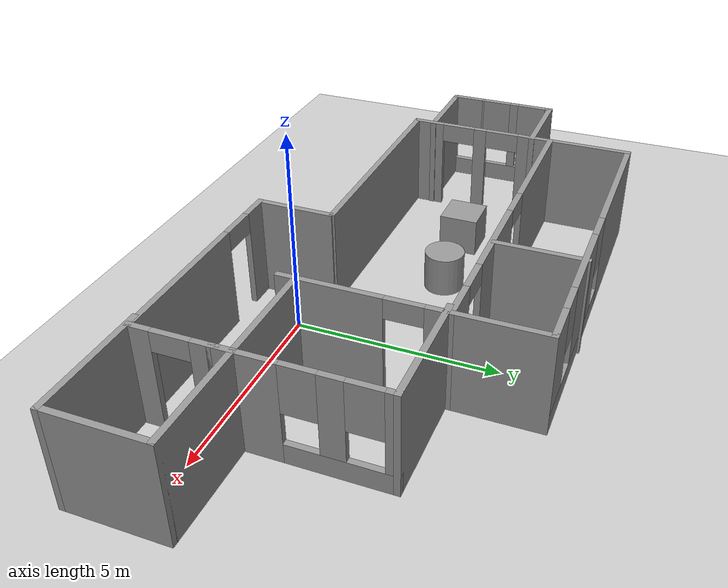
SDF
<sdf version="1.7">
 <world name="default">
  <light name="sun" type="directional">
   <pose>0 0 10 0 -0 0</pose>
   <diffuse>0.8 0.8 0.8 1</diffuse>
   <specular>0.2 0.2 0.2 1</specular>
   <attenuation>
    <range>1000</range>
    <constant>0.9</constant>
    <linear>0.01</linear>
    <quadratic>0.001</quadratic>
   </attenuation>
   <direction>-0.5 0.1 -0.9</direction>
   <spot><inner_angle>0</inner_angle><outer_angle>0</outer_angle><falloff>0</falloff></spot>
  </light>
  <model name="ground_plane">
   <static>1</static>
   <link name="link">
    <collision name="collision">
     <geometry><plane><normal>0 0 1</normal><size>100 100</size></plane></geometry>
     <surface><friction><ode><mu>100</mu><mu2>50</mu2></ode></friction></surface>
    </collision>
    <visual name="visual">
     <cast_shadows>0</cast_shadows>
     <geometry><plane><normal>0 0 1</normal><size>100 100</size></plane></geometry>
     <material>
      <script><uri>file://media/materials/scripts/gazebo.material</uri><name>Gazebo/Grey</name></script>
     </material>
    </visual>
   </link>
  </model>
  <gravity>0 0 -9.8</gravity>
  <magnetic_field>6e-06 2.3e-05 -4.2e-05</magnetic_field>
  <atmosphere type="adiabatic"/>
  <physics type="ode">
   <max_step_size>0.001</max_step_size>
   <real_time_factor>1</real_time_factor>
   <real_time_update_rate>1000</real_time_update_rate>
  </physics>
  <scene><ambient>0.4 0.4 0.4 1</ambient><background>0.7 0.7 0.7 1</background><shadows>1</shadows></scene>
  <audio><device>default</device></audio>
  <spherical_coordinates>
   <surface_model>EARTH_WGS84</surface_model>
   <latitude_deg>0</latitude_deg>
   <longitude_deg>0</longitude_deg>
   <elevation>0</elevation>
   <heading_deg>0</heading_deg>
  </spherical_coordinates>
  <model name="room">
   <pose>-1.21742 2.4324 0 0 -0 0</pose>
   <link name="Wall_12">
    <pose>-1.58672 1.82393 0 0 -0 0</pose>
    <visual name="Wall_12_Visual_0">
     <pose>-2.70259 0 1.25 0 -0 0</pose>
     <geometry><box><size>3.34482 0.15 2.5</size></box></geometry>
     <material>
      <script><uri>file://media/materials/scripts/gazebo.material</uri><name>Gazebo/Grey</name></script>
      <ambient>1 1 1 1</ambient>
     </material>
     <meta><layer>0</layer></meta>
    </visual>
    <collision name="Wall_12_Collision_0">
     <geometry><box><size>3.34482 0.15 2.5</size></box></geometry>
     <pose>-2.70259 0 1.25 0 -0 0</pose>
    </collision>
    <visual name="Wall_12_Visual_1">
     <pose>1.13554 0 1.25 0 -0 0</pose>
     <geometry><box><size>2.53143 0.15 2.5</size></box></geometry>
     <material>
      <script><uri>file://media/materials/scripts/gazebo.material</uri><name>Gazebo/Grey</name></script>
      <ambient>1 1 1 1</ambient>
     </material>
     <meta><layer>0</layer></meta>
    </visual>
    <collision name="Wall_12_Collision_1">
     <geometry><box><size>2.53143 0.15 2.5</size></box></geometry>
     <pose>1.13554 0 1.25 0 -0 0</pose>
    </collision>
    <visual name="Wall_12_Visual_2">
     <pose>3.83812 0 1.25 0 -0 0</pose>
     <geometry><box><size>1.07375 0.15 2.5</size></box></geometry>
     <material>
      <script><uri>file://media/materials/scripts/gazebo.material</uri><name>Gazebo/Grey</name></script>
      <ambient>1 1 1 1</ambient>
     </material>
     <meta><layer>0</layer></meta>
    </visual>
    <collision name="Wall_12_Collision_2">
     <geometry><box><size>1.07375 0.15 2.5</size></box></geometry>
     <pose>3.83812 0 1.25 0 -0 0</pose>
    </collision>
    <visual name="Wall_12_Visual_3">
     <pose>-0.580177 0 2.25 0 -0 0</pose>
     <geometry><box><size>0.9 0.15 0.5</size></box></geometry>
     <material>
      <script><uri>file://media/materials/scripts/gazebo.material</uri><name>Gazebo/Grey</name></script>
      <ambient>1 1 1 1</ambient>
     </material>
     <meta><layer>0</layer></meta>
    </visual>
    <collision name="Wall_12_Collision_3">
     <geometry><box><size>0.9 0.15 0.5</size></box></geometry>
     <pose>-0.580177 0 2.25 0 -0 0</pose>
    </collision>
    <visual name="Wall_12_Visual_4">
     <pose>2.85125 0 2.25 0 -0 0</pose>
     <geometry><box><size>0.9 0.15 0.5</size></box></geometry>
     <material>
      <script><uri>file://media/materials/scripts/gazebo.material</uri><name>Gazebo/Grey</name></script>
      <ambient>1 1 1 1</ambient>
     </material>
     <meta><layer>0</layer></meta>
    </visual>
    <collision name="Wall_12_Collision_4">
     <geometry><box><size>0.9 0.15 0.5</size></box></geometry>
     <pose>2.85125 0 2.25 0 -0 0</pose>
    </collision>
   </link>
   <link name="Wall_13">
    <pose>2.71328 -0.101075 0 0 -0 -1.5708</pose>
    <visual name="Wall_13_Visual_0">
     <pose>-1.68439 0 1.25 0 -0 0</pose>
     <geometry><box><size>0.631218 0.15 2.5</size></box></geometry>
     <material>
      <script><uri>file://media/materials/scripts/gazebo.material</uri><name>Gazebo/Grey</name></script>
      <ambient>1 1 1 1</ambient>
     </material>
     <meta><layer>0</layer></meta>
    </visual>
    <collision name="Wall_13_Collision_0">
     <geometry><box><size>0.631218 0.15 2.5</size></box></geometry>
     <pose>-1.68439 0 1.25 0 -0 0</pose>
    </collision>
    <visual name="Wall_13_Visual_1">
     <pose>0.765609 0 1.25 0 -0 0</pose>
     <geometry><box><size>2.46878 0.15 2.5</size></box></geometry>
     <material>
      <script><uri>file://media/materials/scripts/gazebo.material</uri><name>Gazebo/Grey</name></script>
      <ambient>1 1 1 1</ambient>
     </material>
     <meta><layer>0</layer></meta>
    </visual>
    <collision name="Wall_13_Collision_1">
     <geometry><box><size>2.46878 0.15 2.5</size></box></geometry>
     <pose>0.765609 0 1.25 0 -0 0</pose>
    </collision>
    <visual name="Wall_13_Visual_2">
     <pose>-0.918782 0 2.25 0 -0 0</pose>
     <geometry><box><size>0.9 0.15 0.5</size></box></geometry>
     <material>
      <script><uri>file://media/materials/scripts/gazebo.material</uri><name>Gazebo/Grey</name></script>
      <ambient>1 1 1 1</ambient>
     </material>
     <meta><layer>0</layer></meta>
    </visual>
    <collision name="Wall_13_Collision_2">
     <geometry><box><size>0.9 0.15 0.5</size></box></geometry>
     <pose>-0.918782 0 2.25 0 -0 0</pose>
    </collision>
   </link>
   <link name="Wall_16">
    <collision name="Wall_16_Collision">
     <geometry><box><size>2 0.15 2.5</size></box></geometry>
     <pose>0 0 1.25 0 -0 0</pose>
    </collision>
    <visual name="Wall_16_Visual">
     <pose>0 0 1.25 0 -0 0</pose>
     <geometry><box><size>2 0.15 2.5</size></box></geometry>
     <material>
      <script><uri>file://media/materials/scripts/gazebo.material</uri><name>Gazebo/Grey</name></script>
      <ambient>1 1 1 1</ambient>
     </material>
     <meta><layer>0</layer></meta>
    </visual>
    <pose>0.014322 -3.00671 0 0 -0 -1.5708</pose>
   </link>
   <link name="Wall_17">
    <pose>2.68932 -3.93172 0 0 -0 0</pose>
    <visual name="Wall_17_Visual_0">
     <pose>-2.3656 0 1.25 0 -0 0</pose>
     <geometry><box><size>0.768809 0.15 2.5</size></box></geometry>
     <material>
      <script><uri>file://media/materials/scripts/gazebo.material</uri><name>Gazebo/Grey</name></script>
      <ambient>1 1 1 1</ambient>
     </material>
     <meta><layer>0</layer></meta>
    </visual>
    <collision name="Wall_17_Collision_0">
     <geometry><box><size>0.768809 0.15 2.5</size></box></geometry>
     <pose>-2.3656 0 1.25 0 -0 0</pose>
    </collision>
    <visual name="Wall_17_Visual_1">
     <pose>0.834404 0 1.25 0 -0 0</pose>
     <geometry><box><size>3.83119 0.15 2.5</size></box></geometry>
     <material>
      <script><uri>file://media/materials/scripts/gazebo.material</uri><name>Gazebo/Grey</name></script>
      <ambient>1 1 1 1</ambient>
     </material>
     <meta><layer>0</layer></meta>
    </visual>
    <collision name="Wall_17_Collision_1">
     <geometry><box><size>3.83119 0.15 2.5</size></box></geometry>
     <pose>0.834404 0 1.25 0 -0 0</pose>
    </collision>
    <visual name="Wall_17_Visual_2">
     <pose>-1.53119 0 2.25 0 -0 0</pose>
     <geometry><box><size>0.9 0.15 0.5</size></box></geometry>
     <material>
      <script><uri>file://media/materials/scripts/gazebo.material</uri><name>Gazebo/Grey</name></script>
      <ambient>1 1 1 1</ambient>
     </material>
     <meta><layer>0</layer></meta>
    </visual>
    <collision name="Wall_17_Collision_2">
     <geometry><box><size>0.9 0.15 0.5</size></box></geometry>
     <pose>-1.53119 0 2.25 0 -0 0</pose>
    </collision>
   </link>
   <link name="Wall_18">
    <pose>5.36432 -3.00671 0 0 -0 1.5708</pose>
    <visual name="Wall_18_Visual_0">
     <pose>-0.714703 0 1.25 0 -0 0</pose>
     <geometry><box><size>0.570593 0.15 2.5</size></box></geometry>
     <material>
      <script><uri>file://media/materials/scripts/gazebo.material</uri><name>Gazebo/Grey</name></script>
      <ambient>1 1 1 1</ambient>
     </material>
     <meta><layer>0</layer></meta>
    </visual>
    <collision name="Wall_18_Collision_0">
     <geometry><box><size>0.570593 0.15 2.5</size></box></geometry>
     <pose>-0.714703 0 1.25 0 -0 0</pose>
    </collision>
    <visual name="Wall_18_Visual_1">
     <pose>0.735297 0 1.25 0 -0 0</pose>
     <geometry><box><size>0.529407 0.15 2.5</size></box></geometry>
     <material>
      <script><uri>file://media/materials/scripts/gazebo.material</uri><name>Gazebo/Grey</name></script>
      <ambient>1 1 1 1</ambient>
     </material>
     <meta><layer>0</layer></meta>
    </visual>
    <collision name="Wall_18_Collision_1">
     <geometry><box><size>0.529407 0.15 2.5</size></box></geometry>
     <pose>0.735297 0 1.25 0 -0 0</pose>
    </collision>
    <visual name="Wall_18_Visual_2">
     <pose>0.020593 0 2.25 0 -0 0</pose>
     <geometry><box><size>0.9 0.15 0.5</size></box></geometry>
     <material>
      <script><uri>file://media/materials/scripts/gazebo.material</uri><name>Gazebo/Grey</name></script>
      <ambient>1 1 1 1</ambient>
     </material>
     <meta><layer>0</layer></meta>
    </visual>
    <collision name="Wall_18_Collision_2">
     <geometry><box><size>0.9 0.15 0.5</size></box></geometry>
     <pose>0.020593 0 2.25 0 -0 0</pose>
    </collision>
   </link>
   <link name="Wall_19">
    <collision name="Wall_19_Collision">
     <geometry><box><size>0.15 0.15 2.5</size></box></geometry>
     <pose>0 0 1.25 0 -0 0</pose>
    </collision>
    <visual name="Wall_19_Visual">
     <pose>0 0 1.25 0 -0 0</pose>
     <geometry><box><size>0.15 0.15 2.5</size></box></geometry>
     <material>
      <script><uri>file://media/materials/scripts/gazebo.material</uri><name>Gazebo/Grey</name></script>
      <ambient>1 1 1 1</ambient>
     </material>
     <meta><layer>0</layer></meta>
    </visual>
    <pose>5.36432 -2.08171 0 0 -0 0</pose>
   </link>
   <link name="Wall_20">
    <collision name="Wall_20_Collision">
     <geometry><box><size>0.25 0.15 2.5</size></box></geometry>
     <pose>0 0 1.25 0 -0 0</pose>
    </collision>
    <visual name="Wall_20_Visual">
     <pose>0 0 1.25 0 -0 0</pose>
     <geometry><box><size>0.25 0.15 2.5</size></box></geometry>
     <material>
      <script><uri>file://media/materials/scripts/gazebo.material</uri><name>Gazebo/Grey</name></script>
      <ambient>1 1 1 1</ambient>
     </material>
     <meta><layer>0</layer></meta>
    </visual>
    <pose>5.36432 -2.03172 0 0 -0 1.5708</pose>
   </link>
   <link name="Wall_21">
    <collision name="Wall_21_Collision">
     <geometry><box><size>0.5 0.15 2.5</size></box></geometry>
     <pose>0 0 1.25 0 -0 0</pose>
    </collision>
    <visual name="Wall_21_Visual">
     <pose>0 0 1.25 0 -0 0</pose>
     <geometry><box><size>0.5 0.15 2.5</size></box></geometry>
     <material>
      <script><uri>file://media/materials/scripts/gazebo.material</uri><name>Gazebo/Grey</name></script>
      <ambient>1 1 1 1</ambient>
     </material>
     <meta><layer>0</layer></meta>
    </visual>
    <pose>5.36432 -1.80672 0 0 -0 1.5708</pose>
   </link>
   <link name="Wall_22">
    <collision name="Wall_22_Collision">
     <geometry><box><size>2.75 0.15 2.5</size></box></geometry>
     <pose>0 0 1.25 0 -0 0</pose>
    </collision>
    <visual name="Wall_22_Visual">
     <pose>0 0 1.25 0 -0 0</pose>
     <geometry><box><size>2.75 0.15 2.5</size></box></geometry>
     <material>
      <script><uri>file://media/materials/scripts/gazebo.material</uri><name>Gazebo/Grey</name></script>
      <ambient>1 1 1 1</ambient>
     </material>
     <meta><layer>0</layer></meta>
    </visual>
    <pose>4.06432 -1.63172 0 0 -0 3.14159</pose>
   </link>
   <link name="Wall_24">
    <collision name="Wall_24_Collision">
     <geometry><box><size>6 0.15 2.5</size></box></geometry>
     <pose>0 0 1.25 0 -0 0</pose>
    </collision>
    <visual name="Wall_24_Visual">
     <pose>0 0 1.25 0 -0 0</pose>
     <geometry><box><size>6 0.15 2.5</size></box></geometry>
     <material>
      <script><uri>file://media/materials/scripts/gazebo.material</uri><name>Gazebo/Grey</name></script>
      <ambient>1 1 1 1</ambient>
     </material>
     <meta><layer>0</layer></meta>
    </visual>
    <pose>-2.96172 -2.02608 0 0 -0 0</pose>
   </link>
   <link name="Wall_26">
    <collision name="Wall_26_Collision">
     <geometry><box><size>2.75 0.15 2.5</size></box></geometry>
     <pose>0 0 1.25 0 -0 0</pose>
    </collision>
    <visual name="Wall_26_Visual">
     <pose>0 0 1.25 0 -0 0</pose>
     <geometry><box><size>2.75 0.15 2.5</size></box></geometry>
     <material>
      <script><uri>file://media/materials/scripts/gazebo.material</uri><name>Gazebo/Grey</name></script>
      <ambient>1 1 1 1</ambient>
     </material>
     <meta><layer>0</layer></meta>
    </visual>
    <pose>6.66432 -1.63172 0 0 -0 0</pose>
   </link>
   <link name="Wall_27">
    <collision name="Wall_27_Collision">
     <geometry><box><size>2.5 0.15 2.5</size></box></geometry>
     <pose>0 0 1.25 0 -0 0</pose>
    </collision>
    <visual name="Wall_27_Visual">
     <pose>0 0 1.25 0 -0 0</pose>
     <geometry><box><size>2.5 0.15 2.5</size></box></geometry>
     <material>
      <script><uri>file://media/materials/scripts/gazebo.material</uri><name>Gazebo/Grey</name></script>
      <ambient>1 1 1 1</ambient>
     </material>
     <meta><layer>0</layer></meta>
    </visual>
    <pose>7.96432 -2.80672 0 0 -0 -1.5708</pose>
   </link>
   <link name="Wall_28">
    <collision name="Wall_28_Collision">
     <geometry><box><size>3 0.15 2.5</size></box></geometry>
     <pose>0 0 1.25 0 -0 0</pose>
    </collision>
    <visual name="Wall_28_Visual">
     <pose>0 0 1.25 0 -0 0</pose>
     <geometry><box><size>3 0.15 2.5</size></box></geometry>
     <material>
      <script><uri>file://media/materials/scripts/gazebo.material</uri><name>Gazebo/Grey</name></script>
      <ambient>1 1 1 1</ambient>
     </material>
     <meta><layer>0</layer></meta>
    </visual>
    <pose>6.53932 -3.98171 0 0 -0 3.14159</pose>
   </link>
   <link name="Wall_31">
    <pose>5.36432 0.043285 0 0 -0 1.5708</pose>
    <visual name="Wall_31_Visual_0">
     <pose>-1.23309 0 1.25 0 -0 0</pose>
     <geometry><box><size>1.03381 0.15 2.5</size></box></geometry>
     <material>
      <script><uri>file://media/materials/scripts/gazebo.material</uri><name>Gazebo/Grey</name></script>
      <ambient>1 1 1 1</ambient>
     </material>
     <meta><layer>0</layer></meta>
    </visual>
    <collision name="Wall_31_Collision_0">
     <geometry><box><size>1.03381 0.15 2.5</size></box></geometry>
     <pose>-1.23309 0 1.25 0 -0 0</pose>
    </collision>
    <visual name="Wall_31_Visual_1">
     <pose>0.516907 0 0.25 0 -0 0</pose>
     <geometry><box><size>2.46619 0.15 0.5</size></box></geometry>
     <material>
      <script><uri>file://media/materials/scripts/gazebo.material</uri><name>Gazebo/Grey</name></script>
      <ambient>1 1 1 1</ambient>
     </material>
     <meta><layer>0</layer></meta>
    </visual>
    <collision name="Wall_31_Collision_1">
     <geometry><box><size>2.46619 0.15 0.5</size></box></geometry>
     <pose>0.516907 0 0.25 0 -0 0</pose>
    </collision>
    <visual name="Wall_31_Visual_2">
     <pose>0.362119 0 1.5 0 -0 0</pose>
     <geometry><box><size>0.55661 0.15 2</size></box></geometry>
     <material>
      <script><uri>file://media/materials/scripts/gazebo.material</uri><name>Gazebo/Grey</name></script>
      <ambient>1 1 1 1</ambient>
     </material>
     <meta><layer>0</layer></meta>
    </visual>
    <collision name="Wall_31_Collision_2">
     <geometry><box><size>0.55661 0.15 2</size></box></geometry>
     <pose>0.362119 0 1.5 0 -0 0</pose>
    </collision>
    <visual name="Wall_31_Visual_3">
     <pose>1.59521 0 1.5 0 -0 0</pose>
     <geometry><box><size>0.309576 0.15 2</size></box></geometry>
     <material>
      <script><uri>file://media/materials/scripts/gazebo.material</uri><name>Gazebo/Grey</name></script>
      <ambient>1 1 1 1</ambient>
     </material>
     <meta><layer>0</layer></meta>
    </visual>
    <collision name="Wall_31_Collision_3">
     <geometry><box><size>0.309576 0.15 2</size></box></geometry>
     <pose>1.59521 0 1.5 0 -0 0</pose>
    </collision>
    <visual name="Wall_31_Visual_4">
     <pose>-0.316186 0 1.9 0 -0 0</pose>
     <geometry><box><size>0.8 0.15 1.2</size></box></geometry>
     <material>
      <script><uri>file://media/materials/scripts/gazebo.material</uri><name>Gazebo/Grey</name></script>
      <ambient>1 1 1 1</ambient>
     </material>
     <meta><layer>0</layer></meta>
    </visual>
    <collision name="Wall_31_Collision_4">
     <geometry><box><size>0.8 0.15 1.2</size></box></geometry>
     <pose>-0.316186 0 1.9 0 -0 0</pose>
    </collision>
    <visual name="Wall_31_Visual_5">
     <pose>1.04042 0 1.9 0 -0 0</pose>
     <geometry><box><size>0.8 0.15 1.2</size></box></geometry>
     <material>
      <script><uri>file://media/materials/scripts/gazebo.material</uri><name>Gazebo/Grey</name></script>
      <ambient>1 1 1 1</ambient>
     </material>
     <meta><layer>0</layer></meta>
    </visual>
    <collision name="Wall_31_Collision_5">
     <geometry><box><size>0.8 0.15 1.2</size></box></geometry>
     <pose>1.04042 0 1.9 0 -0 0</pose>
    </collision>
   </link>
   <link name="Wall_32">
    <collision name="Wall_32_Collision">
     <geometry><box><size>3 0.15 2.5</size></box></geometry>
     <pose>0 0 1.25 0 -0 0</pose>
    </collision>
    <visual name="Wall_32_Visual">
     <pose>0 0 1.25 0 -0 0</pose>
     <geometry><box><size>3 0.15 2.5</size></box></geometry>
     <material>
      <script><uri>file://media/materials/scripts/gazebo.material</uri><name>Gazebo/Grey</name></script>
      <ambient>1 1 1 1</ambient>
     </material>
     <meta><layer>0</layer></meta>
    </visual>
    <pose>3.93932 1.71829 0 0 -0 3.14159</pose>
   </link>
   <link name="Wall_34">
    <collision name="Wall_34_Collision">
     <geometry><box><size>2.25 0.15 2.5</size></box></geometry>
     <pose>0 0 1.25 0 -0 0</pose>
    </collision>
    <visual name="Wall_34_Visual">
     <pose>0 0 1.25 0 -0 0</pose>
     <geometry><box><size>2.25 0.15 2.5</size></box></geometry>
     <material>
      <script><uri>file://media/materials/scripts/gazebo.material</uri><name>Gazebo/Grey</name></script>
      <ambient>1 1 1 1</ambient>
     </material>
     <meta><layer>0</layer></meta>
    </visual>
    <pose>-5.88672 2.87392 0 0 -0 1.5708</pose>
   </link>
   <link name="Wall_35">
    <pose>-1.58672 3.92393 0 0 -0 0</pose>
    <visual name="Wall_35_Visual_0">
     <pose>-2.46479 0 1.25 0 -0 0</pose>
     <geometry><box><size>3.82043 0.15 2.5</size></box></geometry>
     <material>
      <script><uri>file://media/materials/scripts/gazebo.material</uri><name>Gazebo/Grey</name></script>
      <ambient>1 1 1 1</ambient>
     </material>
     <meta><layer>0</layer></meta>
    </visual>
    <collision name="Wall_35_Collision_0">
     <geometry><box><size>3.82043 0.15 2.5</size></box></geometry>
     <pose>-2.46479 0 1.25 0 -0 0</pose>
    </collision>
    <visual name="Wall_35_Visual_1">
     <pose>1.91021 0 0.25 0 -0 0</pose>
     <geometry><box><size>4.92957 0.15 0.5</size></box></geometry>
     <material>
      <script><uri>file://media/materials/scripts/gazebo.material</uri><name>Gazebo/Grey</name></script>
      <ambient>1 1 1 1</ambient>
     </material>
     <meta><layer>0</layer></meta>
    </visual>
    <collision name="Wall_35_Collision_1">
     <geometry><box><size>4.92957 0.15 0.5</size></box></geometry>
     <pose>1.91021 0 0.25 0 -0 0</pose>
    </collision>
    <visual name="Wall_35_Visual_2">
     <pose>1.38824 0 1.5 0 -0 0</pose>
     <geometry><box><size>2.28562 0.15 2</size></box></geometry>
     <material>
      <script><uri>file://media/materials/scripts/gazebo.material</uri><name>Gazebo/Grey</name></script>
      <ambient>1 1 1 1</ambient>
     </material>
     <meta><layer>0</layer></meta>
    </visual>
    <collision name="Wall_35_Collision_2">
     <geometry><box><size>2.28562 0.15 2</size></box></geometry>
     <pose>1.38824 0 1.5 0 -0 0</pose>
    </collision>
    <visual name="Wall_35_Visual_3">
     <pose>3.85302 0 1.5 0 -0 0</pose>
     <geometry><box><size>1.04395 0.15 2</size></box></geometry>
     <material>
      <script><uri>file://media/materials/scripts/gazebo.material</uri><name>Gazebo/Grey</name></script>
      <ambient>1 1 1 1</ambient>
     </material>
     <meta><layer>0</layer></meta>
    </visual>
    <collision name="Wall_35_Collision_3">
     <geometry><box><size>1.04395 0.15 2</size></box></geometry>
     <pose>3.85302 0 1.5 0 -0 0</pose>
    </collision>
    <visual name="Wall_35_Visual_4">
     <pose>-0.154574 0 1.9 0 -0 0</pose>
     <geometry><box><size>0.8 0.15 1.2</size></box></geometry>
     <material>
      <script><uri>file://media/materials/scripts/gazebo.material</uri><name>Gazebo/Grey</name></script>
      <ambient>1 1 1 1</ambient>
     </material>
     <meta><layer>0</layer></meta>
    </visual>
    <collision name="Wall_35_Collision_4">
     <geometry><box><size>0.8 0.15 1.2</size></box></geometry>
     <pose>-0.154574 0 1.9 0 -0 0</pose>
    </collision>
    <visual name="Wall_35_Visual_5">
     <pose>2.93105 0 1.9 0 -0 0</pose>
     <geometry><box><size>0.8 0.15 1.2</size></box></geometry>
     <material>
      <script><uri>file://media/materials/scripts/gazebo.material</uri><name>Gazebo/Grey</name></script>
      <ambient>1 1 1 1</ambient>
     </material>
     <meta><layer>0</layer></meta>
    </visual>
    <collision name="Wall_35_Collision_5">
     <geometry><box><size>0.8 0.15 1.2</size></box></geometry>
     <pose>2.93105 0 1.9 0 -0 0</pose>
    </collision>
   </link>
   <link name="Wall_36">
    <collision name="Wall_36_Collision">
     <geometry><box><size>2.25 0.15 2.5</size></box></geometry>
     <pose>0 0 1.25 0 -0 0</pose>
    </collision>
    <visual name="Wall_36_Visual">
     <pose>0 0 1.25 0 -0 0</pose>
     <geometry><box><size>2.25 0.15 2.5</size></box></geometry>
     <material>
      <script><uri>file://media/materials/scripts/gazebo.material</uri><name>Gazebo/Grey</name></script>
      <ambient>1 1 1 1</ambient>
     </material>
     <meta><layer>0</layer></meta>
    </visual>
    <pose>2.71328 2.87392 0 0 -0 -1.5708</pose>
   </link>
   <link name="Wall_38">
    <collision name="Wall_38_Collision">
     <geometry><box><size>2.25 0.15 2.5</size></box></geometry>
     <pose>0 0 1.25 0 -0 0</pose>
    </collision>
    <visual name="Wall_38_Visual">
     <pose>0 0 1.25 0 -0 0</pose>
     <geometry><box><size>2.25 0.15 2.5</size></box></geometry>
     <material>
      <script><uri>file://media/materials/scripts/gazebo.material</uri><name>Gazebo/Grey</name></script>
      <ambient>1 1 1 1</ambient>
     </material>
     <meta><layer>0</layer></meta>
    </visual>
    <pose>-0.19848 2.93172 0 0 -0 1.5708</pose>
   </link>
   <link name="Wall_40">
    <collision name="Wall_40_Collision">
     <geometry><box><size>2.25 0.15 2.5</size></box></geometry>
     <pose>0 0 1.25 0 -0 0</pose>
    </collision>
    <visual name="Wall_40_Visual">
     <pose>0 0 1.25 0 -0 0</pose>
     <geometry><box><size>2.25 0.15 2.5</size></box></geometry>
     <material>
      <script><uri>file://media/materials/scripts/gazebo.material</uri><name>Gazebo/Grey</name></script>
      <ambient>1 1 1 1</ambient>
     </material>
     <meta><layer>0</layer></meta>
    </visual>
    <pose>-6.91432 1.32311 0 0 -0 3.14159</pose>
   </link>
   <link name="Wall_41">
    <pose>-7.96432 -0.101889 0 0 -0 -1.5708</pose>
    <visual name="Wall_41_Visual_0">
     <pose>-1.3965 0 1.25 0 -0 0</pose>
     <geometry><box><size>0.207004 0.15 2.5</size></box></geometry>
     <material>
      <script><uri>file://media/materials/scripts/gazebo.material</uri><name>Gazebo/Grey</name></script>
      <ambient>1 1 1 1</ambient>
     </material>
     <meta><layer>0</layer></meta>
    </visual>
    <collision name="Wall_41_Collision_0">
     <geometry><box><size>0.207004 0.15 2.5</size></box></geometry>
     <pose>-1.3965 0 1.25 0 -0 0</pose>
    </collision>
    <visual name="Wall_41_Visual_1">
     <pose>0.103502 0 0.25 0 -0 0</pose>
     <geometry><box><size>2.793 0.15 0.5</size></box></geometry>
     <material>
      <script><uri>file://media/materials/scripts/gazebo.material</uri><name>Gazebo/Grey</name></script>
      <ambient>1 1 1 1</ambient>
     </material>
     <meta><layer>0</layer></meta>
    </visual>
    <collision name="Wall_41_Collision_1">
     <geometry><box><size>2.793 0.15 0.5</size></box></geometry>
     <pose>0.103502 0 0.25 0 -0 0</pose>
    </collision>
    <visual name="Wall_41_Visual_2">
     <pose>-0.374292 0 1.5 0 -0 0</pose>
     <geometry><box><size>0.237408 0.15 2</size></box></geometry>
     <material>
      <script><uri>file://media/materials/scripts/gazebo.material</uri><name>Gazebo/Grey</name></script>
      <ambient>1 1 1 1</ambient>
     </material>
     <meta><layer>0</layer></meta>
    </visual>
    <collision name="Wall_41_Collision_2">
     <geometry><box><size>0.237408 0.15 2</size></box></geometry>
     <pose>-0.374292 0 1.5 0 -0 0</pose>
    </collision>
    <visual name="Wall_41_Visual_3">
     <pose>0.570015 0 1.5 0 -0 0</pose>
     <geometry><box><size>0.051206 0.15 2</size></box></geometry>
     <material>
      <script><uri>file://media/materials/scripts/gazebo.material</uri><name>Gazebo/Grey</name></script>
      <ambient>1 1 1 1</ambient>
     </material>
     <meta><layer>0</layer></meta>
    </visual>
    <collision name="Wall_41_Collision_3">
     <geometry><box><size>0.051206 0.15 2</size></box></geometry>
     <pose>0.570015 0 1.5 0 -0 0</pose>
    </collision>
    <visual name="Wall_41_Visual_4">
     <pose>1.44781 0 1.5 0 -0 0</pose>
     <geometry><box><size>0.104382 0.15 2</size></box></geometry>
     <material>
      <script><uri>file://media/materials/scripts/gazebo.material</uri><name>Gazebo/Grey</name></script>
      <ambient>1 1 1 1</ambient>
     </material>
     <meta><layer>0</layer></meta>
    </visual>
    <collision name="Wall_41_Collision_4">
     <geometry><box><size>0.104382 0.15 2</size></box></geometry>
     <pose>1.44781 0 1.5 0 -0 0</pose>
    </collision>
    <visual name="Wall_41_Visual_5">
     <pose>-0.892996 0 1.9 0 -0 0</pose>
     <geometry><box><size>0.8 0.15 1.2</size></box></geometry>
     <material>
      <script><uri>file://media/materials/scripts/gazebo.material</uri><name>Gazebo/Grey</name></script>
      <ambient>1 1 1 1</ambient>
     </material>
     <meta><layer>0</layer></meta>
    </visual>
    <collision name="Wall_41_Collision_5">
     <geometry><box><size>0.8 0.15 1.2</size></box></geometry>
     <pose>-0.892996 0 1.9 0 -0 0</pose>
    </collision>
    <visual name="Wall_41_Visual_6">
     <pose>0.144412 0 1.9 0 -0 0</pose>
     <geometry><box><size>0.8 0.15 1.2</size></box></geometry>
     <material>
      <script><uri>file://media/materials/scripts/gazebo.material</uri><name>Gazebo/Grey</name></script>
      <ambient>1 1 1 1</ambient>
     </material>
     <meta><layer>0</layer></meta>
    </visual>
    <collision name="Wall_41_Collision_6">
     <geometry><box><size>0.8 0.15 1.2</size></box></geometry>
     <pose>0.144412 0 1.9 0 -0 0</pose>
    </collision>
    <visual name="Wall_41_Visual_7">
     <pose>0.995618 0 1.9 0 -0 0</pose>
     <geometry><box><size>0.8 0.15 1.2</size></box></geometry>
     <material>
      <script><uri>file://media/materials/scripts/gazebo.material</uri><name>Gazebo/Grey</name></script>
      <ambient>1 1 1 1</ambient>
     </material>
     <meta><layer>0</layer></meta>
    </visual>
    <collision name="Wall_41_Collision_7">
     <geometry><box><size>0.8 0.15 1.2</size></box></geometry>
     <pose>0.995618 0 1.9 0 -0 0</pose>
    </collision>
   </link>
   <link name="Wall_42">
    <collision name="Wall_42_Collision">
     <geometry><box><size>2.25 0.15 2.5</size></box></geometry>
     <pose>0 0 1.25 0 -0 0</pose>
    </collision>
    <visual name="Wall_42_Visual">
     <pose>0 0 1.25 0 -0 0</pose>
     <geometry><box><size>2.25 0.15 2.5</size></box></geometry>
     <material>
      <script><uri>file://media/materials/scripts/gazebo.material</uri><name>Gazebo/Grey</name></script>
      <ambient>1 1 1 1</ambient>
     </material>
     <meta><layer>0</layer></meta>
    </visual>
    <pose>-6.91432 -1.52689 0 0 -0 0</pose>
   </link>
   <link name="Wall_8">
    <pose>-5.88672 -0.101075 0 0 -0 -1.5708</pose>
    <visual name="Wall_8_Visual_0">
     <pose>-1.51149 0 1.25 0 -0 0</pose>
     <geometry><box><size>0.97702 0.15 2.5</size></box></geometry>
     <material>
      <script><uri>file://media/materials/scripts/gazebo.material</uri><name>Gazebo/Grey</name></script>
      <ambient>1 1 1 1</ambient>
     </material>
     <meta><layer>0</layer></meta>
    </visual>
    <collision name="Wall_8_Collision_0">
     <geometry><box><size>0.97702 0.15 2.5</size></box></geometry>
     <pose>-1.51149 0 1.25 0 -0 0</pose>
    </collision>
    <visual name="Wall_8_Visual_1">
     <pose>0.052125 0 1.25 0 -0 0</pose>
     <geometry><box><size>0.350209 0.15 2.5</size></box></geometry>
     <material>
      <script><uri>file://media/materials/scripts/gazebo.material</uri><name>Gazebo/Grey</name></script>
      <ambient>1 1 1 1</ambient>
     </material>
     <meta><layer>0</layer></meta>
    </visual>
    <collision name="Wall_8_Collision_1">
     <geometry><box><size>0.350209 0.15 2.5</size></box></geometry>
     <pose>0.052125 0 1.25 0 -0 0</pose>
    </collision>
    <visual name="Wall_8_Visual_2">
     <pose>1.56361 0 1.25 0 -0 0</pose>
     <geometry><box><size>0.87277 0.15 2.5</size></box></geometry>
     <material>
      <script><uri>file://media/materials/scripts/gazebo.material</uri><name>Gazebo/Grey</name></script>
      <ambient>1 1 1 1</ambient>
     </material>
     <meta><layer>0</layer></meta>
    </visual>
    <collision name="Wall_8_Collision_2">
     <geometry><box><size>0.87277 0.15 2.5</size></box></geometry>
     <pose>1.56361 0 1.25 0 -0 0</pose>
    </collision>
    <visual name="Wall_8_Visual_3">
     <pose>-0.57298 0 2.25 0 -0 0</pose>
     <geometry><box><size>0.9 0.15 0.5</size></box></geometry>
     <material>
      <script><uri>file://media/materials/scripts/gazebo.material</uri><name>Gazebo/Grey</name></script>
      <ambient>1 1 1 1</ambient>
     </material>
     <meta><layer>0</layer></meta>
    </visual>
    <collision name="Wall_8_Collision_3">
     <geometry><box><size>0.9 0.15 0.5</size></box></geometry>
     <pose>-0.57298 0 2.25 0 -0 0</pose>
    </collision>
    <visual name="Wall_8_Visual_4">
     <pose>0.67723 0 2.25 0 -0 0</pose>
     <geometry><box><size>0.9 0.15 0.5</size></box></geometry>
     <material>
      <script><uri>file://media/materials/scripts/gazebo.material</uri><name>Gazebo/Grey</name></script>
      <ambient>1 1 1 1</ambient>
     </material>
     <meta><layer>0</layer></meta>
    </visual>
    <collision name="Wall_8_Collision_4">
     <geometry><box><size>0.9 0.15 0.5</size></box></geometry>
     <pose>0.67723 0 2.25 0 -0 0</pose>
    </collision>
   </link>
   <static>1</static>
  </model>
  <model name="unit_box">
   <pose>-5.07063 2.49527 0.499995 -1e-05 -0 0</pose>
   <link name="link">
    <inertial>
     <mass>1</mass>
     <inertia>
      <ixx>0.166667</ixx>
      <ixy>0</ixy>
      <ixz>0</ixz>
      <iyy>0.166667</iyy>
      <iyz>0</iyz>
      <izz>0.166667</izz>
     </inertia>
    </inertial>
    <collision name="collision"><geometry><box><size>1 1 1</size></box></geometry></collision>
    <visual name="visual">
     <geometry><box><size>1 1 1</size></box></geometry>
     <material>
      <script><name>Gazebo/Grey</name><uri>file://media/materials/scripts/gazebo.material</uri></script>
     </material>
    </visual>
   </link>
  </model>
  <model name="unit_cylinder">
   <pose>-2.92361 2.67381 0.499997 3e-06 4e-06 -0</pose>
   <link name="link">
    <inertial>
     <mass>1</mass>
     <inertia><ixx>0.145833</ixx><ixy>0</ixy><ixz>0</ixz><iyy>0.145833</iyy><iyz>0</iyz><izz>0.125</izz></inertia>
    </inertial>
    <collision name="collision">
     <geometry><cylinder><radius>0.5</radius><length>1</length></cylinder></geometry>
    </collision>
    <visual name="visual">
     <geometry><cylinder><radius>0.5</radius><length>1</length></cylinder></geometry>
     <material>
      <script><name>Gazebo/Grey</name><uri>file://media/materials/scripts/gazebo.material</uri></script>
     </material>
    </visual>
   </link>
  </model>
 </world>
</sdf>
